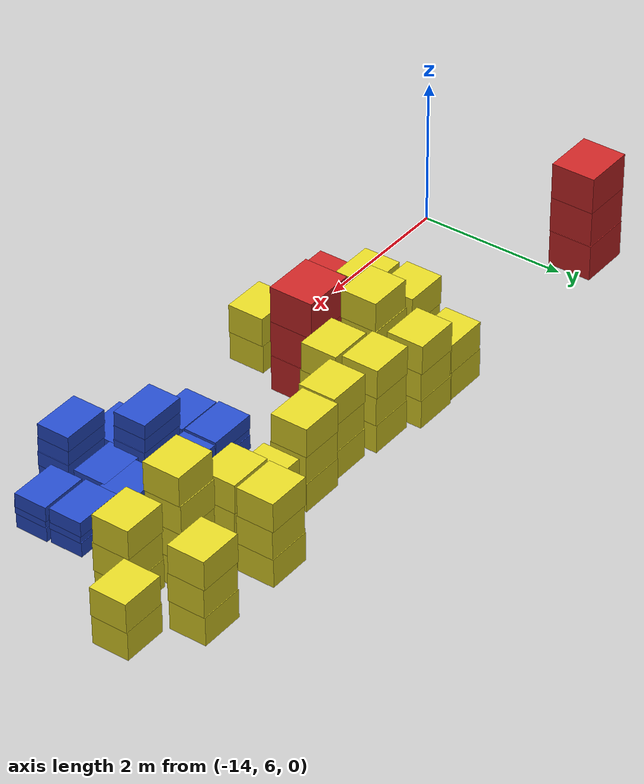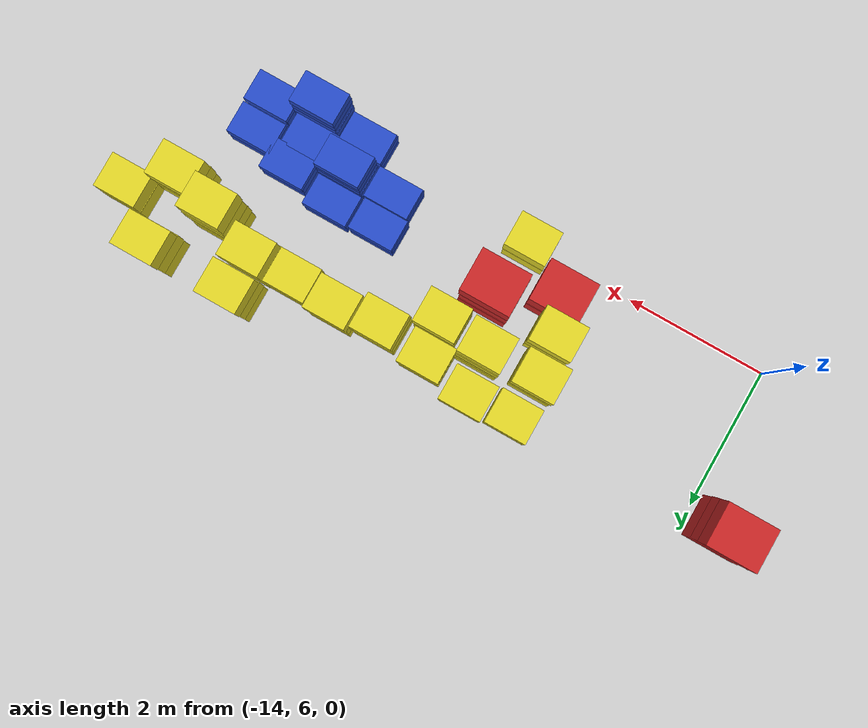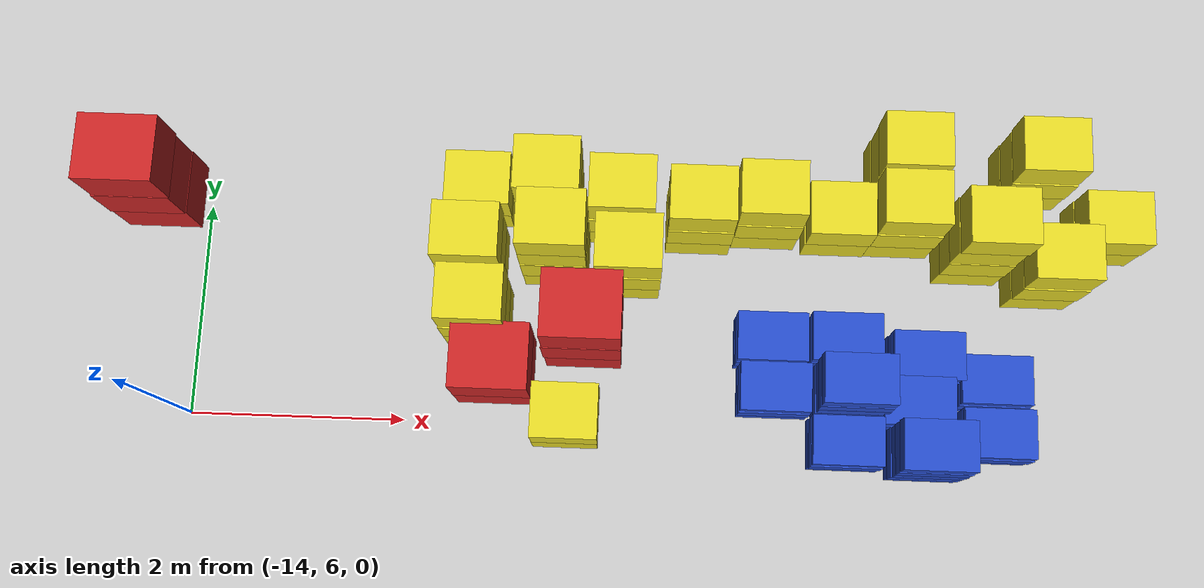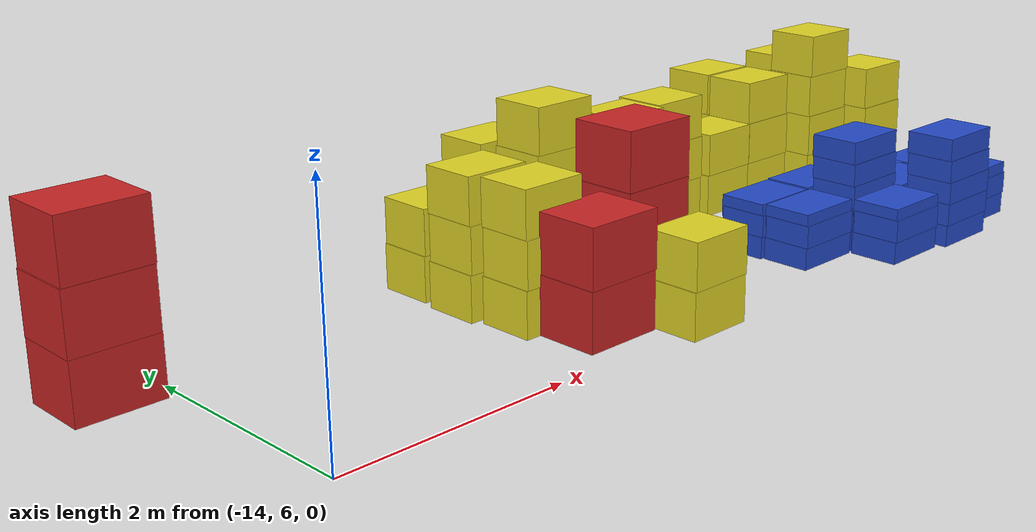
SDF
<sdf version="1.6">
 <world name="default">
  <include><uri>model://sun</uri></include>
  <model name="baggage_A_x3_4">
   <model name="baggage_A_0">
    <static>1</static>
    <link name="link">
     <collision name="collision"><geometry><box><size>0.7 0.6 0.5</size></box></geometry></collision>
     <visual name="visual">
      <geometry><box><size>0.7 0.6 0.5</size></box></geometry>
      <material>
       <script><uri>file://media/materials/scripts/gazebo.material</uri><name>Gazebo/Red</name></script>
      </material>
     </visual>
    </link>
    <pose>0 0 0.25 0 -0 0</pose>
   </model>
   <model name="baggage_A_1">
    <static>1</static>
    <link name="link">
     <collision name="collision"><geometry><box><size>0.7 0.6 0.5</size></box></geometry></collision>
     <visual name="visual">
      <geometry><box><size>0.7 0.6 0.5</size></box></geometry>
      <material>
       <script><uri>file://media/materials/scripts/gazebo.material</uri><name>Gazebo/Red</name></script>
      </material>
     </visual>
    </link>
    <pose>-0.006 -0.0077 0.75 0 -0 0</pose>
   </model>
   <model name="baggage_A_2">
    <static>1</static>
    <link name="link">
     <collision name="collision"><geometry><box><size>0.7 0.6 0.5</size></box></geometry></collision>
     <visual name="visual">
      <geometry><box><size>0.7 0.6 0.5</size></box></geometry>
      <material>
       <script><uri>file://media/materials/scripts/gazebo.material</uri><name>Gazebo/Red</name></script>
      </material>
     </visual>
    </link>
    <pose>0.0045 0.0005 1.25 0 -0 0</pose>
   </model>
   <pose>-14.4326 8.09505 0 0 -0 0</pose>
  </model>
  <model name="baggage_C_x2_19">
   <model name="baggage_C_0">
    <static>1</static>
    <link name="link">
     <collision name="collision"><geometry><box><size>0.6 0.5 0.4</size></box></geometry></collision>
     <visual name="visual">
      <geometry><box><size>0.6 0.5 0.4</size></box></geometry>
      <material>
       <script><uri>file://media/materials/scripts/gazebo.material</uri><name>Gazebo/Yellow</name></script>
      </material>
     </visual>
    </link>
    <pose>0 0 0.2 0 -0 0</pose>
   </model>
   <model name="baggage_C_1">
    <static>1</static>
    <link name="link">
     <collision name="collision"><geometry><box><size>0.6 0.5 0.4</size></box></geometry></collision>
     <visual name="visual">
      <geometry><box><size>0.6 0.5 0.4</size></box></geometry>
      <material>
       <script><uri>file://media/materials/scripts/gazebo.material</uri><name>Gazebo/Yellow</name></script>
      </material>
     </visual>
    </link>
    <pose>0.0093 -0.002 0.6 0 -0 0</pose>
   </model>
   <pose>-11.3695 8.15878 0 0 -0 0</pose>
  </model>
  <model name="baggage_C_x3_17">
   <model name="baggage_C_0">
    <static>1</static>
    <link name="link">
     <collision name="collision"><geometry><box><size>0.6 0.5 0.4</size></box></geometry></collision>
     <visual name="visual">
      <geometry><box><size>0.6 0.5 0.4</size></box></geometry>
      <material>
       <script><uri>file://media/materials/scripts/gazebo.material</uri><name>Gazebo/Yellow</name></script>
      </material>
     </visual>
    </link>
    <pose>0 0 0.2 0 -0 0</pose>
   </model>
   <model name="baggage_C_1">
    <static>1</static>
    <link name="link">
     <collision name="collision"><geometry><box><size>0.6 0.5 0.4</size></box></geometry></collision>
     <visual name="visual">
      <geometry><box><size>0.6 0.5 0.4</size></box></geometry>
      <material>
       <script><uri>file://media/materials/scripts/gazebo.material</uri><name>Gazebo/Yellow</name></script>
      </material>
     </visual>
    </link>
    <pose>0.0062 -0.0069 0.6 0 -0 0</pose>
   </model>
   <model name="baggage_C_2">
    <static>1</static>
    <link name="link">
     <collision name="collision"><geometry><box><size>0.6 0.5 0.4</size></box></geometry></collision>
     <visual name="visual">
      <geometry><box><size>0.6 0.5 0.4</size></box></geometry>
      <material>
       <script><uri>file://media/materials/scripts/gazebo.material</uri><name>Gazebo/Yellow</name></script>
      </material>
     </visual>
    </link>
    <pose>0.0089 0.0083 1 0 -0 0</pose>
   </model>
   <pose>-10.7137 8.18868 0 0 -0 0</pose>
  </model>
  <model name="baggage_C_x3_18">
   <model name="baggage_C_0">
    <static>1</static>
    <link name="link">
     <collision name="collision"><geometry><box><size>0.6 0.5 0.4</size></box></geometry></collision>
     <visual name="visual">
      <geometry><box><size>0.6 0.5 0.4</size></box></geometry>
      <material>
       <script><uri>file://media/materials/scripts/gazebo.material</uri><name>Gazebo/Yellow</name></script>
      </material>
     </visual>
    </link>
    <pose>0 0 0.2 0 -0 0</pose>
   </model>
   <model name="baggage_C_1">
    <static>1</static>
    <link name="link">
     <collision name="collision"><geometry><box><size>0.6 0.5 0.4</size></box></geometry></collision>
     <visual name="visual">
      <geometry><box><size>0.6 0.5 0.4</size></box></geometry>
      <material>
       <script><uri>file://media/materials/scripts/gazebo.material</uri><name>Gazebo/Yellow</name></script>
      </material>
     </visual>
    </link>
    <pose>0.0062 -0.0069 0.6 0 -0 0</pose>
   </model>
   <model name="baggage_C_2">
    <static>1</static>
    <link name="link">
     <collision name="collision"><geometry><box><size>0.6 0.5 0.4</size></box></geometry></collision>
     <visual name="visual">
      <geometry><box><size>0.6 0.5 0.4</size></box></geometry>
      <material>
       <script><uri>file://media/materials/scripts/gazebo.material</uri><name>Gazebo/Yellow</name></script>
      </material>
     </visual>
    </link>
    <pose>0.0089 0.0083 1 0 -0 0</pose>
   </model>
   <pose>-11.405 7.55441 0 0 -0 0</pose>
  </model>
  <model name="baggage_C_x3_20">
   <model name="baggage_C_0">
    <static>1</static>
    <link name="link">
     <collision name="collision"><geometry><box><size>0.6 0.5 0.4</size></box></geometry></collision>
     <visual name="visual">
      <geometry><box><size>0.6 0.5 0.4</size></box></geometry>
      <material>
       <script><uri>file://media/materials/scripts/gazebo.material</uri><name>Gazebo/Yellow</name></script>
      </material>
     </visual>
    </link>
    <pose>0 0 0.2 0 -0 0</pose>
   </model>
   <model name="baggage_C_1">
    <static>1</static>
    <link name="link">
     <collision name="collision"><geometry><box><size>0.6 0.5 0.4</size></box></geometry></collision>
     <visual name="visual">
      <geometry><box><size>0.6 0.5 0.4</size></box></geometry>
      <material>
       <script><uri>file://media/materials/scripts/gazebo.material</uri><name>Gazebo/Yellow</name></script>
      </material>
     </visual>
    </link>
    <pose>0.0062 -0.0069 0.6 0 -0 0</pose>
   </model>
   <model name="baggage_C_2">
    <static>1</static>
    <link name="link">
     <collision name="collision"><geometry><box><size>0.6 0.5 0.4</size></box></geometry></collision>
     <visual name="visual">
      <geometry><box><size>0.6 0.5 0.4</size></box></geometry>
      <material>
       <script><uri>file://media/materials/scripts/gazebo.material</uri><name>Gazebo/Yellow</name></script>
      </material>
     </visual>
    </link>
    <pose>0.0089 0.0083 1 0 -0 0</pose>
   </model>
   <pose>-10.0284 8.039 0 0 -0 0</pose>
  </model>
  <model name="baggage_C_x4_2">
   <model name="baggage_C_0">
    <static>1</static>
    <link name="link">
     <collision name="collision"><geometry><box><size>0.6 0.5 0.4</size></box></geometry></collision>
     <visual name="visual">
      <geometry><box><size>0.6 0.5 0.4</size></box></geometry>
      <material>
       <script><uri>file://media/materials/scripts/gazebo.material</uri><name>Gazebo/Yellow</name></script>
      </material>
     </visual>
    </link>
    <pose>0 0 0.2 0 -0 0</pose>
   </model>
   <model name="baggage_C_1">
    <static>1</static>
    <link name="link">
     <collision name="collision"><geometry><box><size>0.6 0.5 0.4</size></box></geometry></collision>
     <visual name="visual">
      <geometry><box><size>0.6 0.5 0.4</size></box></geometry>
      <material>
       <script><uri>file://media/materials/scripts/gazebo.material</uri><name>Gazebo/Yellow</name></script>
      </material>
     </visual>
    </link>
    <pose>0.0008 -0.0083 0.6 0 -0 0</pose>
   </model>
   <model name="baggage_C_2">
    <static>1</static>
    <link name="link">
     <collision name="collision"><geometry><box><size>0.6 0.5 0.4</size></box></geometry></collision>
     <visual name="visual">
      <geometry><box><size>0.6 0.5 0.4</size></box></geometry>
      <material>
       <script><uri>file://media/materials/scripts/gazebo.material</uri><name>Gazebo/Yellow</name></script>
      </material>
     </visual>
    </link>
    <pose>0.0001 0.0014 1 0 -0 0</pose>
   </model>
   <model name="baggage_C_3">
    <static>1</static>
    <link name="link">
     <collision name="collision"><geometry><box><size>0.6 0.5 0.4</size></box></geometry></collision>
     <visual name="visual">
      <geometry><box><size>0.6 0.5 0.4</size></box></geometry>
      <material>
       <script><uri>file://media/materials/scripts/gazebo.material</uri><name>Gazebo/Yellow</name></script>
      </material>
     </visual>
    </link>
    <pose>0.007 -0.0089 1.4 0 -0 0</pose>
   </model>
   <pose>-10.6261 7.59737 0 0 -0 0</pose>
  </model>
  <model name="baggage_C_x3_22">
   <model name="baggage_C_0">
    <static>1</static>
    <link name="link">
     <collision name="collision"><geometry><box><size>0.6 0.5 0.4</size></box></geometry></collision>
     <visual name="visual">
      <geometry><box><size>0.6 0.5 0.4</size></box></geometry>
      <material>
       <script><uri>file://media/materials/scripts/gazebo.material</uri><name>Gazebo/Yellow</name></script>
      </material>
     </visual>
    </link>
    <pose>0 0 0.2 0 -0 0</pose>
   </model>
   <model name="baggage_C_1">
    <static>1</static>
    <link name="link">
     <collision name="collision"><geometry><box><size>0.6 0.5 0.4</size></box></geometry></collision>
     <visual name="visual">
      <geometry><box><size>0.6 0.5 0.4</size></box></geometry>
      <material>
       <script><uri>file://media/materials/scripts/gazebo.material</uri><name>Gazebo/Yellow</name></script>
      </material>
     </visual>
    </link>
    <pose>0.0062 -0.0069 0.6 0 -0 0</pose>
   </model>
   <model name="baggage_C_2">
    <static>1</static>
    <link name="link">
     <collision name="collision"><geometry><box><size>0.6 0.5 0.4</size></box></geometry></collision>
     <visual name="visual">
      <geometry><box><size>0.6 0.5 0.4</size></box></geometry>
      <material>
       <script><uri>file://media/materials/scripts/gazebo.material</uri><name>Gazebo/Yellow</name></script>
      </material>
     </visual>
    </link>
    <pose>0.0089 0.0083 1 0 -0 0</pose>
   </model>
   <pose>-9.95676 7.50193 0 0 -0 0</pose>
  </model>
  <model name="baggage_C_x3_23">
   <model name="baggage_C_0">
    <static>1</static>
    <link name="link">
     <collision name="collision"><geometry><box><size>0.6 0.5 0.4</size></box></geometry></collision>
     <visual name="visual">
      <geometry><box><size>0.6 0.5 0.4</size></box></geometry>
      <material>
       <script><uri>file://media/materials/scripts/gazebo.material</uri><name>Gazebo/Yellow</name></script>
      </material>
     </visual>
    </link>
    <pose>0 0 0.2 0 -0 0</pose>
   </model>
   <model name="baggage_C_1">
    <static>1</static>
    <link name="link">
     <collision name="collision"><geometry><box><size>0.6 0.5 0.4</size></box></geometry></collision>
     <visual name="visual">
      <geometry><box><size>0.6 0.5 0.4</size></box></geometry>
      <material>
       <script><uri>file://media/materials/scripts/gazebo.material</uri><name>Gazebo/Yellow</name></script>
      </material>
     </visual>
    </link>
    <pose>0.0062 -0.0069 0.6 0 -0 0</pose>
   </model>
   <model name="baggage_C_2">
    <static>1</static>
    <link name="link">
     <collision name="collision"><geometry><box><size>0.6 0.5 0.4</size></box></geometry></collision>
     <visual name="visual">
      <geometry><box><size>0.6 0.5 0.4</size></box></geometry>
      <material>
       <script><uri>file://media/materials/scripts/gazebo.material</uri><name>Gazebo/Yellow</name></script>
      </material>
     </visual>
    </link>
    <pose>0.0089 0.0083 1 0 -0 0</pose>
   </model>
   <pose>-9.30431 7.95913 0 0 -0 0</pose>
  </model>
  <model name="baggage_C_x3_24">
   <model name="baggage_C_0">
    <static>1</static>
    <link name="link">
     <collision name="collision"><geometry><box><size>0.6 0.5 0.4</size></box></geometry></collision>
     <visual name="visual">
      <geometry><box><size>0.6 0.5 0.4</size></box></geometry>
      <material>
       <script><uri>file://media/materials/scripts/gazebo.material</uri><name>Gazebo/Yellow</name></script>
      </material>
     </visual>
    </link>
    <pose>0 0 0.2 0 -0 0</pose>
   </model>
   <model name="baggage_C_1">
    <static>1</static>
    <link name="link">
     <collision name="collision"><geometry><box><size>0.6 0.5 0.4</size></box></geometry></collision>
     <visual name="visual">
      <geometry><box><size>0.6 0.5 0.4</size></box></geometry>
      <material>
       <script><uri>file://media/materials/scripts/gazebo.material</uri><name>Gazebo/Yellow</name></script>
      </material>
     </visual>
    </link>
    <pose>0.0062 -0.0069 0.6 0 -0 0</pose>
   </model>
   <model name="baggage_C_2">
    <static>1</static>
    <link name="link">
     <collision name="collision"><geometry><box><size>0.6 0.5 0.4</size></box></geometry></collision>
     <visual name="visual">
      <geometry><box><size>0.6 0.5 0.4</size></box></geometry>
      <material>
       <script><uri>file://media/materials/scripts/gazebo.material</uri><name>Gazebo/Yellow</name></script>
      </material>
     </visual>
    </link>
    <pose>0.0089 0.0083 1 0 -0 0</pose>
   </model>
   <pose>-8.67626 8.03335 0 0 -0 0</pose>
  </model>
  <model name="baggage_C_x3_25">
   <model name="baggage_C_0">
    <static>1</static>
    <link name="link">
     <collision name="collision"><geometry><box><size>0.6 0.5 0.4</size></box></geometry></collision>
     <visual name="visual">
      <geometry><box><size>0.6 0.5 0.4</size></box></geometry>
      <material>
       <script><uri>file://media/materials/scripts/gazebo.material</uri><name>Gazebo/Yellow</name></script>
      </material>
     </visual>
    </link>
    <pose>0 0 0.2 0 -0 0</pose>
   </model>
   <model name="baggage_C_1">
    <static>1</static>
    <link name="link">
     <collision name="collision"><geometry><box><size>0.6 0.5 0.4</size></box></geometry></collision>
     <visual name="visual">
      <geometry><box><size>0.6 0.5 0.4</size></box></geometry>
      <material>
       <script><uri>file://media/materials/scripts/gazebo.material</uri><name>Gazebo/Yellow</name></script>
      </material>
     </visual>
    </link>
    <pose>0.0062 -0.0069 0.6 0 -0 0</pose>
   </model>
   <model name="baggage_C_2">
    <static>1</static>
    <link name="link">
     <collision name="collision"><geometry><box><size>0.6 0.5 0.4</size></box></geometry></collision>
     <visual name="visual">
      <geometry><box><size>0.6 0.5 0.4</size></box></geometry>
      <material>
       <script><uri>file://media/materials/scripts/gazebo.material</uri><name>Gazebo/Yellow</name></script>
      </material>
     </visual>
    </link>
    <pose>0.0089 0.0083 1 0 -0 0</pose>
   </model>
   <pose>-7.39535 8.52937 0 0 -0 0</pose>
  </model>
  <model name="baggage_C_x3_27">
   <model name="baggage_C_0">
    <static>1</static>
    <link name="link">
     <collision name="collision"><geometry><box><size>0.6 0.5 0.4</size></box></geometry></collision>
     <visual name="visual">
      <geometry><box><size>0.6 0.5 0.4</size></box></geometry>
      <material>
       <script><uri>file://media/materials/scripts/gazebo.material</uri><name>Gazebo/Yellow</name></script>
      </material>
     </visual>
    </link>
    <pose>0 0 0.2 0 -0 0</pose>
   </model>
   <model name="baggage_C_1">
    <static>1</static>
    <link name="link">
     <collision name="collision"><geometry><box><size>0.6 0.5 0.4</size></box></geometry></collision>
     <visual name="visual">
      <geometry><box><size>0.6 0.5 0.4</size></box></geometry>
      <material>
       <script><uri>file://media/materials/scripts/gazebo.material</uri><name>Gazebo/Yellow</name></script>
      </material>
     </visual>
    </link>
    <pose>0.0062 -0.0069 0.6 0 -0 0</pose>
   </model>
   <model name="baggage_C_2">
    <static>1</static>
    <link name="link">
     <collision name="collision"><geometry><box><size>0.6 0.5 0.4</size></box></geometry></collision>
     <visual name="visual">
      <geometry><box><size>0.6 0.5 0.4</size></box></geometry>
      <material>
       <script><uri>file://media/materials/scripts/gazebo.material</uri><name>Gazebo/Yellow</name></script>
      </material>
     </visual>
    </link>
    <pose>0.0089 0.0083 1 0 -0 0</pose>
   </model>
   <pose>-6.17452 8.52259 0 0 -0 0</pose>
  </model>
  <model name="baggage_C_x2_23">
   <model name="baggage_C_0">
    <static>1</static>
    <link name="link">
     <collision name="collision"><geometry><box><size>0.6 0.5 0.4</size></box></geometry></collision>
     <visual name="visual">
      <geometry><box><size>0.6 0.5 0.4</size></box></geometry>
      <material>
       <script><uri>file://media/materials/scripts/gazebo.material</uri><name>Gazebo/Yellow</name></script>
      </material>
     </visual>
    </link>
    <pose>0 0 0.2 0 -0 0</pose>
   </model>
   <model name="baggage_C_1">
    <static>1</static>
    <link name="link">
     <collision name="collision"><geometry><box><size>0.6 0.5 0.4</size></box></geometry></collision>
     <visual name="visual">
      <geometry><box><size>0.6 0.5 0.4</size></box></geometry>
      <material>
       <script><uri>file://media/materials/scripts/gazebo.material</uri><name>Gazebo/Yellow</name></script>
      </material>
     </visual>
    </link>
    <pose>0.0093 -0.002 0.6 0 -0 0</pose>
   </model>
   <pose>-8.01024 7.98836 0 0 -0 0</pose>
  </model>
  <model name="baggage_C_x3_28">
   <model name="baggage_C_0">
    <static>1</static>
    <link name="link">
     <collision name="collision"><geometry><box><size>0.6 0.5 0.4</size></box></geometry></collision>
     <visual name="visual">
      <geometry><box><size>0.6 0.5 0.4</size></box></geometry>
      <material>
       <script><uri>file://media/materials/scripts/gazebo.material</uri><name>Gazebo/Yellow</name></script>
      </material>
     </visual>
    </link>
    <pose>0 0 0.2 0 -0 0</pose>
   </model>
   <model name="baggage_C_1">
    <static>1</static>
    <link name="link">
     <collision name="collision"><geometry><box><size>0.6 0.5 0.4</size></box></geometry></collision>
     <visual name="visual">
      <geometry><box><size>0.6 0.5 0.4</size></box></geometry>
      <material>
       <script><uri>file://media/materials/scripts/gazebo.material</uri><name>Gazebo/Yellow</name></script>
      </material>
     </visual>
    </link>
    <pose>0.0062 -0.0069 0.6 0 -0 0</pose>
   </model>
   <model name="baggage_C_2">
    <static>1</static>
    <link name="link">
     <collision name="collision"><geometry><box><size>0.6 0.5 0.4</size></box></geometry></collision>
     <visual name="visual">
      <geometry><box><size>0.6 0.5 0.4</size></box></geometry>
      <material>
       <script><uri>file://media/materials/scripts/gazebo.material</uri><name>Gazebo/Yellow</name></script>
      </material>
     </visual>
    </link>
    <pose>0.0089 0.0083 1 0 -0 0</pose>
   </model>
   <pose>-7.40596 7.99309 0 0 -0 0</pose>
  </model>
  <model name="baggage_B_x3_14">
   <model name="baggage_B_0">
    <static>1</static>
    <link name="link">
     <collision name="collision"><geometry><box><size>0.65 0.45 0.2</size></box></geometry></collision>
     <visual name="visual">
      <geometry><box><size>0.65 0.45 0.2</size></box></geometry>
      <material>
       <script><uri>file://media/materials/scripts/gazebo.material</uri><name>Gazebo/Blue</name></script>
      </material>
     </visual>
    </link>
    <pose>0 0 0.1 0 -0 0</pose>
   </model>
   <model name="baggage_B_1">
    <static>1</static>
    <link name="link">
     <collision name="collision"><geometry><box><size>0.65 0.45 0.2</size></box></geometry></collision>
     <visual name="visual">
      <geometry><box><size>0.65 0.45 0.2</size></box></geometry>
      <material>
       <script><uri>file://media/materials/scripts/gazebo.material</uri><name>Gazebo/Blue</name></script>
      </material>
     </visual>
    </link>
    <pose>0.0028 -0.0086 0.3 0 -0 0</pose>
   </model>
   <model name="baggage_B_2">
    <static>1</static>
    <link name="link">
     <collision name="collision"><geometry><box><size>0.65 0.45 0.2</size></box></geometry></collision>
     <visual name="visual">
      <geometry><box><size>0.65 0.45 0.2</size></box></geometry>
      <material>
       <script><uri>file://media/materials/scripts/gazebo.material</uri><name>Gazebo/Blue</name></script>
      </material>
     </visual>
    </link>
    <pose>0.0092 0.006 0.4 0 -0 0</pose>
   </model>
   <pose>-8.60522 6.83115 0 0 -0 0</pose>
  </model>
  <model name="baggage_B_x3_15">
   <model name="baggage_B_0">
    <static>1</static>
    <link name="link">
     <collision name="collision"><geometry><box><size>0.65 0.45 0.2</size></box></geometry></collision>
     <visual name="visual">
      <geometry><box><size>0.65 0.45 0.2</size></box></geometry>
      <material>
       <script><uri>file://media/materials/scripts/gazebo.material</uri><name>Gazebo/Blue</name></script>
      </material>
     </visual>
    </link>
    <pose>0 0 0.1 0 -0 0</pose>
   </model>
   <model name="baggage_B_1">
    <static>1</static>
    <link name="link">
     <collision name="collision"><geometry><box><size>0.65 0.45 0.2</size></box></geometry></collision>
     <visual name="visual">
      <geometry><box><size>0.65 0.45 0.2</size></box></geometry>
      <material>
       <script><uri>file://media/materials/scripts/gazebo.material</uri><name>Gazebo/Blue</name></script>
      </material>
     </visual>
    </link>
    <pose>0.0028 -0.0086 0.3 0 -0 0</pose>
   </model>
   <model name="baggage_B_2">
    <static>1</static>
    <link name="link">
     <collision name="collision"><geometry><box><size>0.65 0.45 0.2</size></box></geometry></collision>
     <visual name="visual">
      <geometry><box><size>0.65 0.45 0.2</size></box></geometry>
      <material>
       <script><uri>file://media/materials/scripts/gazebo.material</uri><name>Gazebo/Blue</name></script>
      </material>
     </visual>
    </link>
    <pose>0.0092 0.006 0.4 0 -0 0</pose>
   </model>
   <pose>-7.91816 6.85061 0 0 -0 0</pose>
  </model>
  <model name="baggage_B_x3_16">
   <model name="baggage_B_0">
    <static>1</static>
    <link name="link">
     <collision name="collision"><geometry><box><size>0.65 0.45 0.2</size></box></geometry></collision>
     <visual name="visual">
      <geometry><box><size>0.65 0.45 0.2</size></box></geometry>
      <material>
       <script><uri>file://media/materials/scripts/gazebo.material</uri><name>Gazebo/Blue</name></script>
      </material>
     </visual>
    </link>
    <pose>0 0 0.1 0 -0 0</pose>
   </model>
   <model name="baggage_B_1">
    <static>1</static>
    <link name="link">
     <collision name="collision"><geometry><box><size>0.65 0.45 0.2</size></box></geometry></collision>
     <visual name="visual">
      <geometry><box><size>0.65 0.45 0.2</size></box></geometry>
      <material>
       <script><uri>file://media/materials/scripts/gazebo.material</uri><name>Gazebo/Blue</name></script>
      </material>
     </visual>
    </link>
    <pose>0.0028 -0.0086 0.3 0 -0 0</pose>
   </model>
   <model name="baggage_B_2">
    <static>1</static>
    <link name="link">
     <collision name="collision"><geometry><box><size>0.65 0.45 0.2</size></box></geometry></collision>
     <visual name="visual">
      <geometry><box><size>0.65 0.45 0.2</size></box></geometry>
      <material>
       <script><uri>file://media/materials/scripts/gazebo.material</uri><name>Gazebo/Blue</name></script>
      </material>
     </visual>
    </link>
    <pose>0.0092 0.006 0.4 0 -0 0</pose>
   </model>
   <pose>-8.57325 6.36856 0 0 -0 0</pose>
  </model>
  <model name="baggage_B_x5_15">
   <model name="baggage_B_0">
    <static>1</static>
    <link name="link">
     <collision name="collision"><geometry><box><size>0.65 0.45 0.2</size></box></geometry></collision>
     <visual name="visual">
      <geometry><box><size>0.65 0.45 0.2</size></box></geometry>
      <material>
       <script><uri>file://media/materials/scripts/gazebo.material</uri><name>Gazebo/Blue</name></script>
      </material>
     </visual>
    </link>
    <pose>0 0 0.1 0 -0 0</pose>
   </model>
   <model name="baggage_B_1">
    <static>1</static>
    <link name="link">
     <collision name="collision"><geometry><box><size>0.65 0.45 0.2</size></box></geometry></collision>
     <visual name="visual">
      <geometry><box><size>0.65 0.45 0.2</size></box></geometry>
      <material>
       <script><uri>file://media/materials/scripts/gazebo.material</uri><name>Gazebo/Blue</name></script>
      </material>
     </visual>
    </link>
    <pose>-0.0014 -0.0091 0.3 0 -0 0</pose>
   </model>
   <model name="baggage_B_2">
    <static>1</static>
    <link name="link">
     <collision name="collision"><geometry><box><size>0.65 0.45 0.2</size></box></geometry></collision>
     <visual name="visual">
      <geometry><box><size>0.65 0.45 0.2</size></box></geometry>
      <material>
       <script><uri>file://media/materials/scripts/gazebo.material</uri><name>Gazebo/Blue</name></script>
      </material>
     </visual>
    </link>
    <pose>0.0076 -0.0066 0.5 0 -0 0</pose>
   </model>
   <model name="baggage_B_3">
    <static>1</static>
    <link name="link">
     <collision name="collision"><geometry><box><size>0.65 0.45 0.2</size></box></geometry></collision>
     <visual name="visual">
      <geometry><box><size>0.65 0.45 0.2</size></box></geometry>
      <material>
       <script><uri>file://media/materials/scripts/gazebo.material</uri><name>Gazebo/Blue</name></script>
      </material>
     </visual>
    </link>
    <pose>0 -0.0032 0.7 0 -0 0</pose>
   </model>
   <model name="baggage_B_4">
    <static>1</static>
    <link name="link">
     <collision name="collision"><geometry><box><size>0.65 0.45 0.2</size></box></geometry></collision>
     <visual name="visual">
      <geometry><box><size>0.65 0.45 0.2</size></box></geometry>
      <material>
       <script><uri>file://media/materials/scripts/gazebo.material</uri><name>Gazebo/Blue</name></script>
      </material>
     </visual>
    </link>
    <pose>0.0023 0.0073 0.9 0 -0 0</pose>
   </model>
   <pose>-7.8733 6.38805 0 0 -0 0</pose>
  </model>
  <model name="baggage_C_x4_3">
   <model name="baggage_C_0">
    <static>1</static>
    <link name="link">
     <collision name="collision"><geometry><box><size>0.6 0.5 0.4</size></box></geometry></collision>
     <visual name="visual">
      <geometry><box><size>0.6 0.5 0.4</size></box></geometry>
      <material>
       <script><uri>file://media/materials/scripts/gazebo.material</uri><name>Gazebo/Yellow</name></script>
      </material>
     </visual>
    </link>
    <pose>0 0 0.2 0 -0 0</pose>
   </model>
   <model name="baggage_C_1">
    <static>1</static>
    <link name="link">
     <collision name="collision"><geometry><box><size>0.6 0.5 0.4</size></box></geometry></collision>
     <visual name="visual">
      <geometry><box><size>0.6 0.5 0.4</size></box></geometry>
      <material>
       <script><uri>file://media/materials/scripts/gazebo.material</uri><name>Gazebo/Yellow</name></script>
      </material>
     </visual>
    </link>
    <pose>0.0008 -0.0083 0.6 0 -0 0</pose>
   </model>
   <model name="baggage_C_2">
    <static>1</static>
    <link name="link">
     <collision name="collision"><geometry><box><size>0.6 0.5 0.4</size></box></geometry></collision>
     <visual name="visual">
      <geometry><box><size>0.6 0.5 0.4</size></box></geometry>
      <material>
       <script><uri>file://media/materials/scripts/gazebo.material</uri><name>Gazebo/Yellow</name></script>
      </material>
     </visual>
    </link>
    <pose>0.0001 0.0014 1 0 -0 0</pose>
   </model>
   <model name="baggage_C_3">
    <static>1</static>
    <link name="link">
     <collision name="collision"><geometry><box><size>0.6 0.5 0.4</size></box></geometry></collision>
     <visual name="visual">
      <geometry><box><size>0.6 0.5 0.4</size></box></geometry>
      <material>
       <script><uri>file://media/materials/scripts/gazebo.material</uri><name>Gazebo/Yellow</name></script>
      </material>
     </visual>
    </link>
    <pose>0.007 -0.0089 1.4 0 -0 0</pose>
   </model>
   <pose>-6.75581 7.75037 0 0 -0 0</pose>
  </model>
  <model name="baggage_C_x3_29">
   <model name="baggage_C_0">
    <static>1</static>
    <link name="link">
     <collision name="collision"><geometry><box><size>0.6 0.5 0.4</size></box></geometry></collision>
     <visual name="visual">
      <geometry><box><size>0.6 0.5 0.4</size></box></geometry>
      <material>
       <script><uri>file://media/materials/scripts/gazebo.material</uri><name>Gazebo/Yellow</name></script>
      </material>
     </visual>
    </link>
    <pose>0 0 0.2 0 -0 0</pose>
   </model>
   <model name="baggage_C_1">
    <static>1</static>
    <link name="link">
     <collision name="collision"><geometry><box><size>0.6 0.5 0.4</size></box></geometry></collision>
     <visual name="visual">
      <geometry><box><size>0.6 0.5 0.4</size></box></geometry>
      <material>
       <script><uri>file://media/materials/scripts/gazebo.material</uri><name>Gazebo/Yellow</name></script>
      </material>
     </visual>
    </link>
    <pose>0.0062 -0.0069 0.6 0 -0 0</pose>
   </model>
   <model name="baggage_C_2">
    <static>1</static>
    <link name="link">
     <collision name="collision"><geometry><box><size>0.6 0.5 0.4</size></box></geometry></collision>
     <visual name="visual">
      <geometry><box><size>0.6 0.5 0.4</size></box></geometry>
      <material>
       <script><uri>file://media/materials/scripts/gazebo.material</uri><name>Gazebo/Yellow</name></script>
      </material>
     </visual>
    </link>
    <pose>0.0089 0.0083 1 0 -0 0</pose>
   </model>
   <pose>-6.09358 7.5414 0 0 -0 0</pose>
  </model>
  <model name="baggage_C_x2_24">
   <model name="baggage_C_0">
    <static>1</static>
    <link name="link">
     <collision name="collision"><geometry><box><size>0.6 0.5 0.4</size></box></geometry></collision>
     <visual name="visual">
      <geometry><box><size>0.6 0.5 0.4</size></box></geometry>
      <material>
       <script><uri>file://media/materials/scripts/gazebo.material</uri><name>Gazebo/Yellow</name></script>
      </material>
     </visual>
    </link>
    <pose>0 0 0.2 0 -0 0</pose>
   </model>
   <model name="baggage_C_1">
    <static>1</static>
    <link name="link">
     <collision name="collision"><geometry><box><size>0.6 0.5 0.4</size></box></geometry></collision>
     <visual name="visual">
      <geometry><box><size>0.6 0.5 0.4</size></box></geometry>
      <material>
       <script><uri>file://media/materials/scripts/gazebo.material</uri><name>Gazebo/Yellow</name></script>
      </material>
     </visual>
    </link>
    <pose>0.0093 -0.002 0.6 0 -0 0</pose>
   </model>
   <pose>-5.48917 7.99243 0 0 -0 0</pose>
  </model>
  <model name="baggage_C_x3_31">
   <model name="baggage_C_0">
    <static>1</static>
    <link name="link">
     <collision name="collision"><geometry><box><size>0.6 0.5 0.4</size></box></geometry></collision>
     <visual name="visual">
      <geometry><box><size>0.6 0.5 0.4</size></box></geometry>
      <material>
       <script><uri>file://media/materials/scripts/gazebo.material</uri><name>Gazebo/Yellow</name></script>
      </material>
     </visual>
    </link>
    <pose>0 0 0.2 0 -0 0</pose>
   </model>
   <model name="baggage_C_1">
    <static>1</static>
    <link name="link">
     <collision name="collision"><geometry><box><size>0.6 0.5 0.4</size></box></geometry></collision>
     <visual name="visual">
      <geometry><box><size>0.6 0.5 0.4</size></box></geometry>
      <material>
       <script><uri>file://media/materials/scripts/gazebo.material</uri><name>Gazebo/Yellow</name></script>
      </material>
     </visual>
    </link>
    <pose>0.0062 -0.0069 0.6 0 -0 0</pose>
   </model>
   <model name="baggage_C_2">
    <static>1</static>
    <link name="link">
     <collision name="collision"><geometry><box><size>0.6 0.5 0.4</size></box></geometry></collision>
     <visual name="visual">
      <geometry><box><size>0.6 0.5 0.4</size></box></geometry>
      <material>
       <script><uri>file://media/materials/scripts/gazebo.material</uri><name>Gazebo/Yellow</name></script>
      </material>
     </visual>
    </link>
    <pose>0.0089 0.0083 1 0 -0 0</pose>
   </model>
   <pose>-11.3358 6.99322 0 0 -0 0</pose>
  </model>
  <model name="baggage_A_x2_21">
   <model name="baggage_A_0">
    <static>1</static>
    <link name="link">
     <collision name="collision"><geometry><box><size>0.7 0.6 0.5</size></box></geometry></collision>
     <visual name="visual">
      <geometry><box><size>0.7 0.6 0.5</size></box></geometry>
      <material>
       <script><uri>file://media/materials/scripts/gazebo.material</uri><name>Gazebo/Red</name></script>
      </material>
     </visual>
    </link>
    <pose>0 0 0.25 0 -0 0</pose>
   </model>
   <model name="baggage_A_1">
    <static>1</static>
    <link name="link">
     <collision name="collision"><geometry><box><size>0.7 0.6 0.5</size></box></geometry></collision>
     <visual name="visual">
      <geometry><box><size>0.7 0.6 0.5</size></box></geometry>
      <material>
       <script><uri>file://media/materials/scripts/gazebo.material</uri><name>Gazebo/Red</name></script>
      </material>
     </visual>
    </link>
    <pose>0.0063 -0.0062 0.75 0 -0 0</pose>
   </model>
   <pose>-11.1466 6.48827 0 0 -0 0</pose>
  </model>
  <model name="baggage_C_x2_32">
   <model name="baggage_C_0">
    <static>1</static>
    <link name="link">
     <collision name="collision"><geometry><box><size>0.6 0.5 0.4</size></box></geometry></collision>
     <visual name="visual">
      <geometry><box><size>0.6 0.5 0.4</size></box></geometry>
      <material>
       <script><uri>file://media/materials/scripts/gazebo.material</uri><name>Gazebo/Yellow</name></script>
      </material>
     </visual>
    </link>
    <pose>0 0 0.2 0 -0 0</pose>
   </model>
   <model name="baggage_C_1">
    <static>1</static>
    <link name="link">
     <collision name="collision"><geometry><box><size>0.6 0.5 0.4</size></box></geometry></collision>
     <visual name="visual">
      <geometry><box><size>0.6 0.5 0.4</size></box></geometry>
      <material>
       <script><uri>file://media/materials/scripts/gazebo.material</uri><name>Gazebo/Yellow</name></script>
      </material>
     </visual>
    </link>
    <pose>0.0093 -0.002 0.6 0 -0 0</pose>
   </model>
   <pose>-10.4771 6.04744 0 0 -0 0</pose>
  </model>
  <model name="baggage_B_x3_26">
   <model name="baggage_B_0">
    <static>1</static>
    <link name="link">
     <collision name="collision"><geometry><box><size>0.65 0.45 0.2</size></box></geometry></collision>
     <visual name="visual">
      <geometry><box><size>0.65 0.45 0.2</size></box></geometry>
      <material>
       <script><uri>file://media/materials/scripts/gazebo.material</uri><name>Gazebo/Blue</name></script>
      </material>
     </visual>
    </link>
    <pose>0 0 0.1 0 -0 0</pose>
   </model>
   <model name="baggage_B_1">
    <static>1</static>
    <link name="link">
     <collision name="collision"><geometry><box><size>0.65 0.45 0.2</size></box></geometry></collision>
     <visual name="visual">
      <geometry><box><size>0.65 0.45 0.2</size></box></geometry>
      <material>
       <script><uri>file://media/materials/scripts/gazebo.material</uri><name>Gazebo/Blue</name></script>
      </material>
     </visual>
    </link>
    <pose>0.0028 -0.0086 0.3 0 -0 0</pose>
   </model>
   <model name="baggage_B_2">
    <static>1</static>
    <link name="link">
     <collision name="collision"><geometry><box><size>0.65 0.45 0.2</size></box></geometry></collision>
     <visual name="visual">
      <geometry><box><size>0.65 0.45 0.2</size></box></geometry>
      <material>
       <script><uri>file://media/materials/scripts/gazebo.material</uri><name>Gazebo/Blue</name></script>
      </material>
     </visual>
    </link>
    <pose>0.0092 0.006 0.4 0 -0 0</pose>
   </model>
   <pose>-7.9122 5.90124 0 0 -0 0</pose>
  </model>
  <model name="baggage_A_x3_26">
   <model name="baggage_A_0">
    <static>1</static>
    <link name="link">
     <collision name="collision"><geometry><box><size>0.7 0.6 0.5</size></box></geometry></collision>
     <visual name="visual">
      <geometry><box><size>0.7 0.6 0.5</size></box></geometry>
      <material>
       <script><uri>file://media/materials/scripts/gazebo.material</uri><name>Gazebo/Red</name></script>
      </material>
     </visual>
    </link>
    <pose>0 0 0.25 0 -0 0</pose>
   </model>
   <model name="baggage_A_1">
    <static>1</static>
    <link name="link">
     <collision name="collision"><geometry><box><size>0.7 0.6 0.5</size></box></geometry></collision>
     <visual name="visual">
      <geometry><box><size>0.7 0.6 0.5</size></box></geometry>
      <material>
       <script><uri>file://media/materials/scripts/gazebo.material</uri><name>Gazebo/Red</name></script>
      </material>
     </visual>
    </link>
    <pose>-0.006 -0.0077 0.75 0 -0 0</pose>
   </model>
   <model name="baggage_A_2">
    <static>1</static>
    <link name="link">
     <collision name="collision"><geometry><box><size>0.7 0.6 0.5</size></box></geometry></collision>
     <visual name="visual">
      <geometry><box><size>0.7 0.6 0.5</size></box></geometry>
      <material>
       <script><uri>file://media/materials/scripts/gazebo.material</uri><name>Gazebo/Red</name></script>
      </material>
     </visual>
    </link>
    <pose>0.0045 0.0005 1.25 0 -0 0</pose>
   </model>
   <pose>-10.3349 6.86425 0 0 -0 0</pose>
  </model>
  <model name="baggage_B_x3_30">
   <model name="baggage_B_0">
    <static>1</static>
    <link name="link">
     <collision name="collision"><geometry><box><size>0.65 0.45 0.2</size></box></geometry></collision>
     <visual name="visual">
      <geometry><box><size>0.65 0.45 0.2</size></box></geometry>
      <material>
       <script><uri>file://media/materials/scripts/gazebo.material</uri><name>Gazebo/Blue</name></script>
      </material>
     </visual>
    </link>
    <pose>0 0 0.1 0 -0 0</pose>
   </model>
   <model name="baggage_B_1">
    <static>1</static>
    <link name="link">
     <collision name="collision"><geometry><box><size>0.65 0.45 0.2</size></box></geometry></collision>
     <visual name="visual">
      <geometry><box><size>0.65 0.45 0.2</size></box></geometry>
      <material>
       <script><uri>file://media/materials/scripts/gazebo.material</uri><name>Gazebo/Blue</name></script>
      </material>
     </visual>
    </link>
    <pose>0.0028 -0.0086 0.3 0 -0 0</pose>
   </model>
   <model name="baggage_B_2">
    <static>1</static>
    <link name="link">
     <collision name="collision"><geometry><box><size>0.65 0.45 0.2</size></box></geometry></collision>
     <visual name="visual">
      <geometry><box><size>0.65 0.45 0.2</size></box></geometry>
      <material>
       <script><uri>file://media/materials/scripts/gazebo.material</uri><name>Gazebo/Blue</name></script>
      </material>
     </visual>
    </link>
    <pose>0.0092 0.006 0.4 0 -0 0</pose>
   </model>
   <pose>-7.26473 6.28545 0 0 -0 0</pose>
  </model>
  <model name="baggage_B_x3_31">
   <model name="baggage_B_0">
    <static>1</static>
    <link name="link">
     <collision name="collision"><geometry><box><size>0.65 0.45 0.2</size></box></geometry></collision>
     <visual name="visual">
      <geometry><box><size>0.65 0.45 0.2</size></box></geometry>
      <material>
       <script><uri>file://media/materials/scripts/gazebo.material</uri><name>Gazebo/Blue</name></script>
      </material>
     </visual>
    </link>
    <pose>0 0 0.1 0 -0 0</pose>
   </model>
   <model name="baggage_B_1">
    <static>1</static>
    <link name="link">
     <collision name="collision"><geometry><box><size>0.65 0.45 0.2</size></box></geometry></collision>
     <visual name="visual">
      <geometry><box><size>0.65 0.45 0.2</size></box></geometry>
      <material>
       <script><uri>file://media/materials/scripts/gazebo.material</uri><name>Gazebo/Blue</name></script>
      </material>
     </visual>
    </link>
    <pose>0.0028 -0.0086 0.3 0 -0 0</pose>
   </model>
   <model name="baggage_B_2">
    <static>1</static>
    <link name="link">
     <collision name="collision"><geometry><box><size>0.65 0.45 0.2</size></box></geometry></collision>
     <visual name="visual">
      <geometry><box><size>0.65 0.45 0.2</size></box></geometry>
      <material>
       <script><uri>file://media/materials/scripts/gazebo.material</uri><name>Gazebo/Blue</name></script>
      </material>
     </visual>
    </link>
    <pose>0.0092 0.006 0.4 0 -0 0</pose>
   </model>
   <pose>-7.17519 6.70609 0 0 -0 0</pose>
  </model>
  <model name="baggage_B_x5_24">
   <model name="baggage_B_0">
    <static>1</static>
    <link name="link">
     <collision name="collision"><geometry><box><size>0.65 0.45 0.2</size></box></geometry></collision>
     <visual name="visual">
      <geometry><box><size>0.65 0.45 0.2</size></box></geometry>
      <material>
       <script><uri>file://media/materials/scripts/gazebo.material</uri><name>Gazebo/Blue</name></script>
      </material>
     </visual>
    </link>
    <pose>0 0 0.1 0 -0 0</pose>
   </model>
   <model name="baggage_B_1">
    <static>1</static>
    <link name="link">
     <collision name="collision"><geometry><box><size>0.65 0.45 0.2</size></box></geometry></collision>
     <visual name="visual">
      <geometry><box><size>0.65 0.45 0.2</size></box></geometry>
      <material>
       <script><uri>file://media/materials/scripts/gazebo.material</uri><name>Gazebo/Blue</name></script>
      </material>
     </visual>
    </link>
    <pose>-0.0014 -0.0091 0.3 0 -0 0</pose>
   </model>
   <model name="baggage_B_2">
    <static>1</static>
    <link name="link">
     <collision name="collision"><geometry><box><size>0.65 0.45 0.2</size></box></geometry></collision>
     <visual name="visual">
      <geometry><box><size>0.65 0.45 0.2</size></box></geometry>
      <material>
       <script><uri>file://media/materials/scripts/gazebo.material</uri><name>Gazebo/Blue</name></script>
      </material>
     </visual>
    </link>
    <pose>0.0076 -0.0066 0.5 0 -0 0</pose>
   </model>
   <model name="baggage_B_3">
    <static>1</static>
    <link name="link">
     <collision name="collision"><geometry><box><size>0.65 0.45 0.2</size></box></geometry></collision>
     <visual name="visual">
      <geometry><box><size>0.65 0.45 0.2</size></box></geometry>
      <material>
       <script><uri>file://media/materials/scripts/gazebo.material</uri><name>Gazebo/Blue</name></script>
      </material>
     </visual>
    </link>
    <pose>0 -0.0032 0.7 0 -0 0</pose>
   </model>
   <model name="baggage_B_4">
    <static>1</static>
    <link name="link">
     <collision name="collision"><geometry><box><size>0.65 0.45 0.2</size></box></geometry></collision>
     <visual name="visual">
      <geometry><box><size>0.65 0.45 0.2</size></box></geometry>
      <material>
       <script><uri>file://media/materials/scripts/gazebo.material</uri><name>Gazebo/Blue</name></script>
      </material>
     </visual>
    </link>
    <pose>0.0023 0.0073 0.9 0 -0 0</pose>
   </model>
   <pose>-7.18797 5.8315 0 0 -0 0</pose>
  </model>
  <model name="baggage_B_x3_32">
   <model name="baggage_B_0">
    <static>1</static>
    <link name="link">
     <collision name="collision"><geometry><box><size>0.65 0.45 0.2</size></box></geometry></collision>
     <visual name="visual">
      <geometry><box><size>0.65 0.45 0.2</size></box></geometry>
      <material>
       <script><uri>file://media/materials/scripts/gazebo.material</uri><name>Gazebo/Blue</name></script>
      </material>
     </visual>
    </link>
    <pose>0 0 0.1 0 -0 0</pose>
   </model>
   <model name="baggage_B_1">
    <static>1</static>
    <link name="link">
     <collision name="collision"><geometry><box><size>0.65 0.45 0.2</size></box></geometry></collision>
     <visual name="visual">
      <geometry><box><size>0.65 0.45 0.2</size></box></geometry>
      <material>
       <script><uri>file://media/materials/scripts/gazebo.material</uri><name>Gazebo/Blue</name></script>
      </material>
     </visual>
    </link>
    <pose>0.0028 -0.0086 0.3 0 -0 0</pose>
   </model>
   <model name="baggage_B_2">
    <static>1</static>
    <link name="link">
     <collision name="collision"><geometry><box><size>0.65 0.45 0.2</size></box></geometry></collision>
     <visual name="visual">
      <geometry><box><size>0.65 0.45 0.2</size></box></geometry>
      <material>
       <script><uri>file://media/materials/scripts/gazebo.material</uri><name>Gazebo/Blue</name></script>
      </material>
     </visual>
    </link>
    <pose>0.0092 0.006 0.4 0 -0 0</pose>
   </model>
   <pose>-6.5655 6.50244 0 0 -0 0</pose>
  </model>
  <model name="baggage_B_x3_33">
   <model name="baggage_B_0">
    <static>1</static>
    <link name="link">
     <collision name="collision"><geometry><box><size>0.65 0.45 0.2</size></box></geometry></collision>
     <visual name="visual">
      <geometry><box><size>0.65 0.45 0.2</size></box></geometry>
      <material>
       <script><uri>file://media/materials/scripts/gazebo.material</uri><name>Gazebo/Blue</name></script>
      </material>
     </visual>
    </link>
    <pose>0 0 0.1 0 -0 0</pose>
   </model>
   <model name="baggage_B_1">
    <static>1</static>
    <link name="link">
     <collision name="collision"><geometry><box><size>0.65 0.45 0.2</size></box></geometry></collision>
     <visual name="visual">
      <geometry><box><size>0.65 0.45 0.2</size></box></geometry>
      <material>
       <script><uri>file://media/materials/scripts/gazebo.material</uri><name>Gazebo/Blue</name></script>
      </material>
     </visual>
    </link>
    <pose>0.0028 -0.0086 0.3 0 -0 0</pose>
   </model>
   <model name="baggage_B_2">
    <static>1</static>
    <link name="link">
     <collision name="collision"><geometry><box><size>0.65 0.45 0.2</size></box></geometry></collision>
     <visual name="visual">
      <geometry><box><size>0.65 0.45 0.2</size></box></geometry>
      <material>
       <script><uri>file://media/materials/scripts/gazebo.material</uri><name>Gazebo/Blue</name></script>
      </material>
     </visual>
    </link>
    <pose>0.0092 0.006 0.4 0 -0 0</pose>
   </model>
   <pose>-6.54306 6.01513 0 0 -0 0</pose>
  </model>
 </world>
</sdf>
